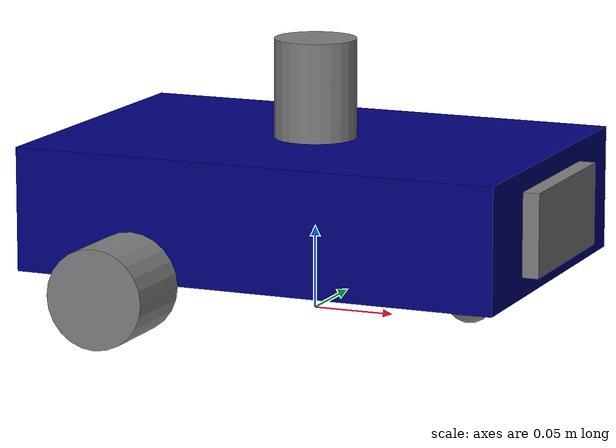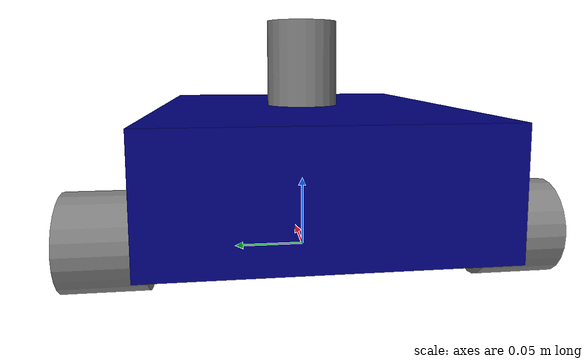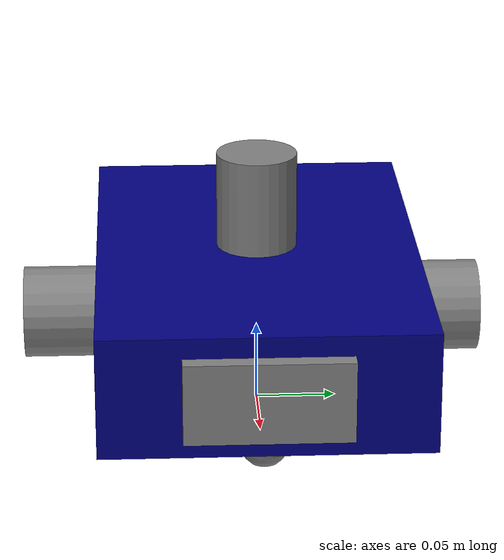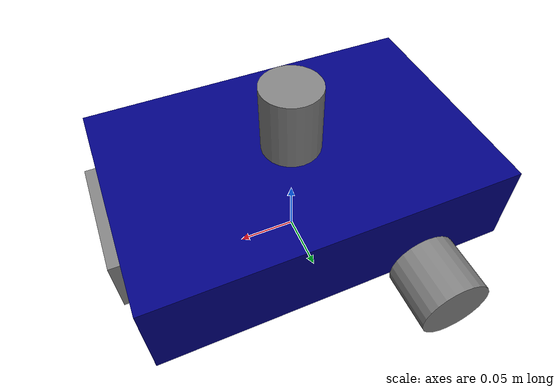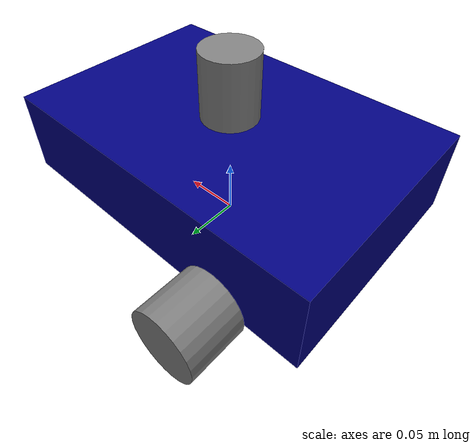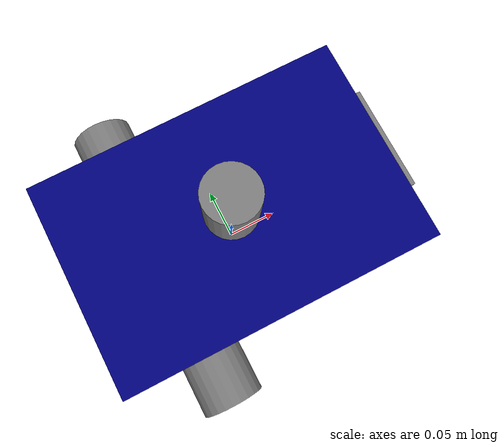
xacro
<?xml version="1.0"?>
<robot name="my_robot" xmlns:xacro="http://www.ros.org/wiki/xacro">

    <xacro:include filename="common_properties.xacro" />
    <xacro:include filename="mobile_base.xacro" />
    <xacro:include filename="mobile_base_gazebo.xacro" />
    <xacro:include filename="camera.xacro" />
    <xacro:include filename="lidar.xacro" />
    <xacro:include filename="imu.xacro" />

</robot>

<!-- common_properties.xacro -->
<robot xmlns:xacro="http://www.ros.org/wiki/xacro">

    <material name="blue">
        <color rgba="0 0 0.5 1" />
    </material>

    <material name="grey">
        <color rgba="0.5 0.5 0.5 1" />
    </material>

    <xacro:macro name="box_inertia" params="m x y z o_xyz o_rpy">
        <inertial>
            <mass value="${m}" />
            <origin xyz="${o_xyz}" rpy="${o_rpy}" />
            <inertia ixx="${m/12 * (z*z + y*y)}" ixy="0" ixz="0"
                     iyy="${m/12 * (z*z + x*x)}" iyz="0"
                     izz="${m/12 * (x*x + y*y)}" />
        </inertial>
    </xacro:macro>

    <xacro:macro name="wheel_inertia" params="m r l o_xyz o_rpy">
        <inertial>
            <mass value="${m}" />
            <origin xyz="${o_xyz}" rpy="${o_rpy}" />
            <inertia ixx="${m/12 * (3*r*r + l*l)}" ixy="0" ixz="0"
                     iyy="${m/12 * (3*r*r + l*l)}" iyz="0"
                     izz="${m/2 * (r*r)}" />
        </inertial>
    </xacro:macro>

    <xacro:macro name="caster_wheel_inertia" params="m r o_xyz o_rpy">
        <inertial>
            <mass value="${m}" />
            <origin xyz="${o_xyz}" rpy="${o_rpy}" />
            <inertia ixx="${(2/5) * m * (r*r)}" ixy="0" ixz="0"
                     iyy="${(2/5) * m * (r*r)}" iyz="0"
                     izz="${(2/5) * m * (r*r)}" />
        </inertial>
    </xacro:macro>

</robot>

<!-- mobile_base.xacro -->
<robot xmlns:xacro="http://www.ros.org/wiki/xacro">

    <xacro:property name="base_length" value="0.3" />
    <xacro:property name="base_width" value="0.2" />
    <xacro:property name="base_height" value="0.075" />
    <xacro:property name="wheel_radius" value="0.03" />
    <xacro:property name="wheel_length" value="0.05" />
    <xacro:property name="sphere_radius" value="${wheel_radius/2}" />

    <xacro:macro name="wheel_link" params="prefix sign">
        <link name="${prefix}_wheel_link">
            <visual>
                <geometry>
                    <cylinder radius="${wheel_radius}" length="${wheel_length}" />
                </geometry>
                <origin xyz="0 ${sign}${wheel_length / 2.0} 0" rpy="-${pi / 2.0} 0 0" />
                <material name="grey" />
            </visual>
            <collision>
                <geometry>
                    <sphere radius="${wheel_radius}" />
                </geometry>
                <origin xyz="0 ${sign}${wheel_length / 2.0} 0" rpy="0 0 0" />
            </collision>
            <xacro:wheel_inertia m="1.0" r="${wheel_radius}" l="${wheel_length}"
                                 o_xyz="0 ${sign}${wheel_length / 2.0} 0" o_rpy="-${pi / 2.0} 0 0" />
        </link>
    </xacro:macro>

    <xacro:wheel_link prefix="right" sign="-" />
    <xacro:wheel_link prefix="left" sign="" />

    <link name="base_footprint" />

    <link name="base_link">
        <visual>
            <geometry>
                <box size="${base_length} ${base_width} ${base_height}" />
            </geometry>
            <origin xyz="0 0 ${base_height / 2.0}" rpy="0 0 0" />
            <material name="blue" />
        </visual>
        <collision>
            <geometry>
                <box size="${base_length} ${base_width} ${base_height}" />
            </geometry>
            <origin xyz="0 0 ${base_height / 2.0}" rpy="0 0 0" />
        </collision>
        <xacro:box_inertia m="10.0" x="${base_length}" y="${base_width}" z="${base_height}"
                           o_xyz="0 0 ${base_height / 2.0}" o_rpy="0 0 0" />
    </link>

    <link name="caster_wheel_link">
        <visual>
            <geometry>
                <sphere radius="${sphere_radius}" />
            </geometry>
            <origin xyz="0 0 -${sphere_radius}" rpy="0 0 0" />
            <material name="grey" />
        </visual>
        <collision>
            <geometry>
                <sphere radius="${sphere_radius}" />
            </geometry>
            <origin xyz="0 0 -${sphere_radius}" rpy="0 0 0" />
        </collision>
        <xacro:caster_wheel_inertia m="0.5" r="${sphere_radius}" o_xyz="0 0 -${sphere_radius}" o_rpy="0 0 0" />
    </link>

    <joint name="base_joint" type="fixed">
        <parent link="base_footprint" />
        <child link="base_link" />
        <origin xyz="0 0 ${wheel_radius}" rpy="0 0 0" />
    </joint>

    <joint name="base_caster_wheel_joint" type="fixed">
        <parent link="base_link" />
        <child link="caster_wheel_link" />
        <origin xyz="${base_length / 3.0} 0 0" rpy="0 0 0" />
    </joint>

    <joint name="base_right_wheel_joint" type="continuous">
        <parent link="base_link" />
        <child link="right_wheel_link" />
        <origin xyz="-${base_length / 4.0} -${base_width / 2.0} 0" rpy="0 0 0" />
        <axis xyz="0 1 0" />
    </joint>

    <joint name="base_left_wheel_joint" type="continuous">
        <parent link="base_link" />
        <child link="left_wheel_link" />
        <origin xyz="-${base_length / 4.0} ${base_width / 2.0} 0" rpy="0 0 0" />
        <axis xyz="0 1 0" />
    </joint>

</robot>

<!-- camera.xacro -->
<robot xmlns:xacro="http://www.ros.org/wiki/xacro">

    <xacro:property name="camera_length" value="0.01" />
    <xacro:property name="camera_width" value="0.1" />
    <xacro:property name="camera_height" value="0.05" />

    <link name="camera_link">
        <visual>
            <geometry>
                <box size="${camera_length} ${camera_width} ${camera_height}" />
            </geometry>
            <material name="grey" />
        </visual>
        <collision>
            <geometry>
                <box size="${camera_length} ${camera_width} ${camera_height}" />
            </geometry>
        </collision>
        <xacro:box_inertia m="0.1" x="${camera_length}" y="${camera_width}" z="${camera_height}"
                           o_xyz="0 0 0" o_rpy="0 0 0" />
    </link>

    <link name="camera_link_optical" />

    <joint name="camera_optical_joint" type="fixed">
        <origin xyz="0 0 0" rpy="${-pi/2} 0 ${-pi/2}" />
        <parent link="camera_link"/>
        <child link="camera_link_optical"/>
    </joint>

    <joint name="base_camera_joint" type="fixed">
        <parent link="base_link" />
        <child link="camera_link" />
        <origin xyz="${(base_length + camera_length) / 2.0} 0 ${base_height / 2.0}" rpy="0 0 0" />
    </joint>

    <gazebo reference="camera_link">
        <sensor name="camera" type="camera">
            <always_on>1</always_on>
            <update_rate>20</update_rate>
            <visualize>true</visualize>
            <topic>camera/image_raw</topic>
            <gz_frame_id>camera_link_optical</gz_frame_id>
            <camera>
                <horizontal_fov>1.3962634</horizontal_fov>
                <image>
                    <width>640</width>
                    <height>480</height>
                    <format>R8G8B8</format>
                </image>
                <clip>
                    <near>0.1</near>
                    <far>15</far>
                </clip>
                <noise>
                    <type>gaussian</type>
                    <mean>0.0</mean>
                    <stddev>0.007</stddev>
                </noise>
                <camera_info_topic>camera/camera_info</camera_info_topic>
            </camera>
        </sensor>
    </gazebo>

</robot>

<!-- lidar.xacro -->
<robot xmlns:xacro="http://www.ros.org/wiki/xacro">

    <xacro:property name="lidar_length" value="0.06" />
    <xacro:property name="lidar_radius" value="0.025" />
    <xacro:property name="lidar_hov" value="80 * ${pi / 180.0}" />

    <link name="lidar_link">
        <visual>
            <origin xyz="0 0 -${lidar_length/2.0}" rpy="0 0 0"/>
            <geometry>
                <cylinder radius="${lidar_radius}" length="${lidar_length}"/>
            </geometry>
            <material name="grey" />
        </visual>
    </link>

    <joint name="base_lidar_joint" type="fixed">
        <parent link="base_link" />
        <child link="lidar_link" />
        <origin xyz="0 0 ${base_height+lidar_length}" rpy="0 0 0" />
    </joint>

    <gazebo reference="lidar_link">
        <sensor name='gpu_lidar' type='gpu_lidar'>
            <topic>scan</topic>
            <update_rate>10</update_rate>
            <always_on>true</always_on>
            <visualize>true</visualize>
            <gz_frame_id>lidar_link</gz_frame_id>
            <pose relative_to='lidar_link'>0 0 0 0 0 0</pose>
            <ray>
                <scan>
                    <horizontal>
                        <samples>640</samples>
                        <resolution>1</resolution>
                        <min_angle>-${lidar_hov}</min_angle>
                        <max_angle>${lidar_hov}</max_angle>
                    </horizontal>
                    <vertical>
                        <samples>1</samples>
                        <resolution>0.01</resolution>
                        <min_angle>0</min_angle>
                        <max_angle>0</max_angle>
                    </vertical>
                </scan>
                <range>
                    <min>0.08</min>
                    <max>10.0</max>
                    <resolution>0.01</resolution>
                </range>
            </ray>
        </sensor>
    </gazebo>

</robot>
